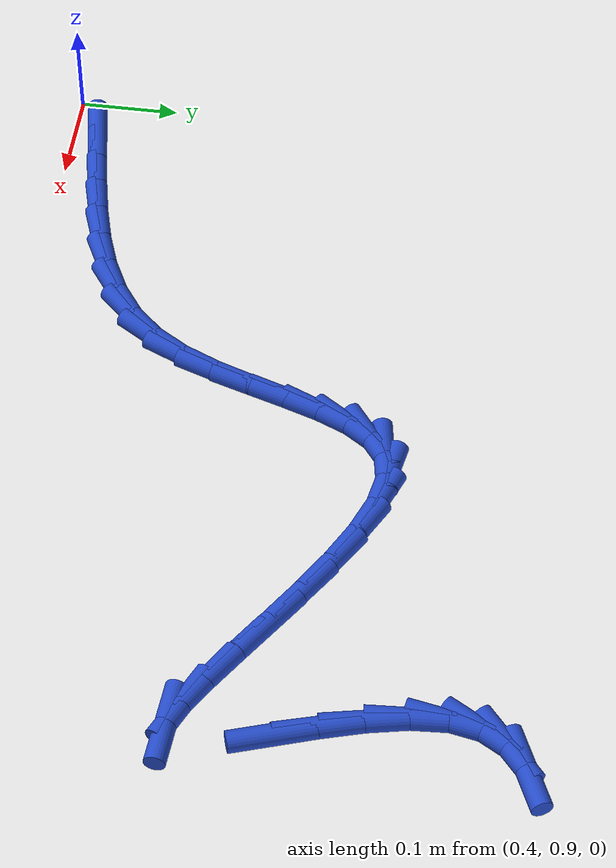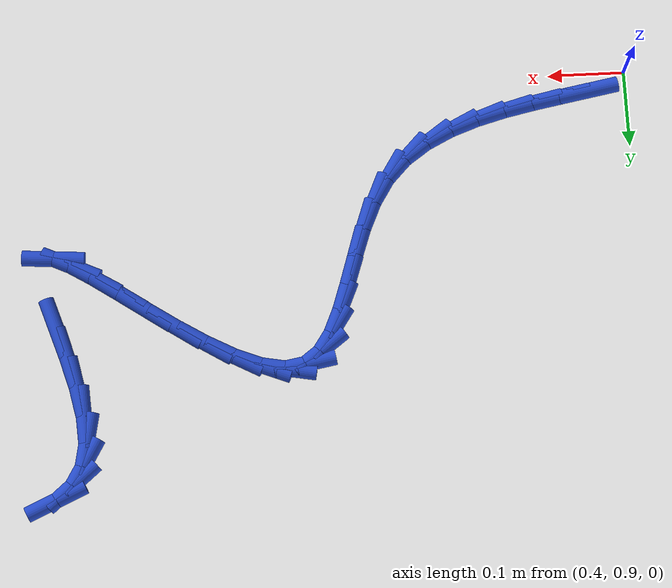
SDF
<sdf version="1.6">
 <world name="default">
  <model name="ground_plane">
   <static>1</static>
   <link name="link">
    <collision name="collision">
     <geometry><plane><normal>0 0 1</normal><size>100 100</size></plane></geometry>
     <surface><friction><ode><mu>100</mu><mu2>50</mu2></ode></friction></surface>
    </collision>
    <visual name="visual">
     <cast_shadows>0</cast_shadows>
     <geometry><plane><normal>0 0 1</normal><size>100 100</size></plane></geometry>
     <material>
      <script><uri>file://media/materials/scripts/gazebo.material</uri><name>Gazebo/WhiteGlow</name></script>
     </material>
    </visual>
   </link>
  </model>
  <model name="line">
   <link name="link_38">
    <pose>0.4507257612650472 0.9255727888614441 0.01 0 1.57 0.18050749366841143</pose>
    <collision name="collision">
     <geometry><cylinder><radius>0.01</radius><length>0.08</length></cylinder></geometry>
    </collision>
    <visual name="visual">
     <material>
      <script><name>Gazebo/Blue</name><uri>file://media/materials/scripts/gazebo.material</uri></script>
     </material>
     <geometry><cylinder><radius>0.01</radius><length>0.08</length></cylinder></geometry>
    </visual>
   </link>
   <link name="link_39">
    <pose>0.48671942074830754 0.9321414112836219 0.01 0 1.57 0.1846366498743513</pose>
    <collision name="collision">
     <geometry><cylinder><radius>0.01</radius><length>0.08</length></cylinder></geometry>
    </collision>
    <visual name="visual">
     <material>
      <script><name>Gazebo/Blue</name><uri>file://media/materials/scripts/gazebo.material</uri></script>
     </material>
     <geometry><cylinder><radius>0.01</radius><length>0.08</length></cylinder></geometry>
    </visual>
   </link>
   <link name="link_40">
    <pose>0.5238939994607079 0.9390842765438132 0.01 0 1.57 0.21304922407864987</pose>
    <collision name="collision">
     <geometry><cylinder><radius>0.01</radius><length>0.08</length></cylinder></geometry>
    </collision>
    <visual name="visual">
     <material>
      <script><name>Gazebo/Blue</name><uri>file://media/materials/scripts/gazebo.material</uri></script>
     </material>
     <geometry><cylinder><radius>0.01</radius><length>0.08</length></cylinder></geometry>
    </visual>
   </link>
   <link name="link_41">
    <pose>0.5613049868696542 0.9471774806280879 0.01 0 1.57 0.26649956743154773</pose>
    <collision name="collision">
     <geometry><cylinder><radius>0.01</radius><length>0.08</length></cylinder></geometry>
    </collision>
    <visual name="visual">
     <material>
      <script><name>Gazebo/Blue</name><uri>file://media/materials/scripts/gazebo.material</uri></script>
     </material>
     <geometry><cylinder><radius>0.01</radius><length>0.08</length></cylinder></geometry>
    </visual>
   </link>
   <link name="link_42">
    <pose>0.5980078724425522 0.9571971195225153 0.01 0 1.57 0.34818163231276467</pose>
    <collision name="collision">
     <geometry><cylinder><radius>0.01</radius><length>0.08</length></cylinder></geometry>
    </collision>
    <visual name="visual">
     <material>
      <script><name>Gazebo/Blue</name><uri>file://media/materials/scripts/gazebo.material</uri></script>
     </material>
     <geometry><cylinder><radius>0.01</radius><length>0.08</length></cylinder></geometry>
    </visual>
   </link>
   <link name="link_43">
    <pose>0.6330581456468071 0.9699192892131655 0.01 0 1.57 0.46301193897874454</pose>
    <collision name="collision">
     <geometry><cylinder><radius>0.01</radius><length>0.08</length></cylinder></geometry>
    </collision>
    <visual name="visual">
     <material>
      <script><name>Gazebo/Blue</name><uri>file://media/materials/scripts/gazebo.material</uri></script>
     </material>
     <geometry><cylinder><radius>0.01</radius><length>0.08</length></cylinder></geometry>
    </visual>
   </link>
   <link name="link_44">
    <pose>0.6655112959498244 0.9861200856861072 0.01 0 1.57 0.6157561213551858</pose>
    <collision name="collision">
     <geometry><cylinder><radius>0.01</radius><length>0.08</length></cylinder></geometry>
    </collision>
    <visual name="visual">
     <material>
      <script><name>Gazebo/Blue</name><uri>file://media/materials/scripts/gazebo.material</uri></script>
     </material>
     <geometry><cylinder><radius>0.01</radius><length>0.08</length></cylinder></geometry>
    </visual>
   </link>
   <link name="link_45">
    <pose>0.6944228128190102 1.0065756049274106 0.01 0 1.57 0.8066515519919774</pose>
    <collision name="collision">
     <geometry><cylinder><radius>0.01</radius><length>0.08</length></cylinder></geometry>
    </collision>
    <visual name="visual">
     <material>
      <script><name>Gazebo/Blue</name><uri>file://media/materials/scripts/gazebo.material</uri></script>
     </material>
     <geometry><cylinder><radius>0.01</radius><length>0.08</length></cylinder></geometry>
    </visual>
   </link>
   <link name="link_46">
    <pose>0.7188481913079522 1.0320619361290564 0.01 0 1.57 1.0084744067232623</pose>
    <collision name="collision">
     <geometry><cylinder><radius>0.01</radius><length>0.08</length></cylinder></geometry>
    </collision>
    <visual name="visual">
     <material>
      <script><name>Gazebo/Blue</name><uri>file://media/materials/scripts/gazebo.material</uri></script>
     </material>
     <geometry><cylinder><radius>0.01</radius><length>0.08</length></cylinder></geometry>
    </visual>
   </link>
   <link name="link_47">
    <pose>0.738253868550962 1.062855368030787 0.01 0 1.57 1.1516465841817818</pose>
    <collision name="collision">
     <geometry><cylinder><radius>0.01</radius><length>0.08</length></cylinder></geometry>
    </collision>
    <visual name="visual">
     <material>
      <script><name>Gazebo/Blue</name><uri>file://media/materials/scripts/gazebo.material</uri></script>
     </material>
     <geometry><cylinder><radius>0.01</radius><length>0.08</length></cylinder></geometry>
    </visual>
   </link>
   <link name="link_48">
    <pose>0.7536338773376839 1.0973742803501427 0.01 0 1.57 1.2335720529055099</pose>
    <collision name="collision">
     <geometry><cylinder><radius>0.01</radius><length>0.08</length></cylinder></geometry>
    </collision>
    <visual name="visual">
     <material>
      <script><name>Gazebo/Blue</name><uri>file://media/materials/scripts/gazebo.material</uri></script>
     </material>
     <geometry><cylinder><radius>0.01</radius><length>0.08</length></cylinder></geometry>
    </visual>
   </link>
   <link name="link_49">
    <pose>0.7663371318305985 1.1336054351170264 0.01 0 1.57 1.2641824726305135</pose>
    <collision name="collision">
     <geometry><cylinder><radius>0.01</radius><length>0.08</length></cylinder></geometry>
    </collision>
    <visual name="visual">
     <material>
      <script><name>Gazebo/Blue</name><uri>file://media/materials/scripts/gazebo.material</uri></script>
     </material>
     <geometry><cylinder><radius>0.01</radius><length>0.08</length></cylinder></geometry>
    </visual>
   </link>
   <link name="link_50">
    <pose>0.7777125461921851 1.1695355943613415 0.01 0 1.57 1.2439360731924185</pose>
    <collision name="collision">
     <geometry><cylinder><radius>0.01</radius><length>0.08</length></cylinder></geometry>
    </collision>
    <visual name="visual">
     <material>
      <script><name>Gazebo/Blue</name><uri>file://media/materials/scripts/gazebo.material</uri></script>
     </material>
     <geometry><cylinder><radius>0.01</radius><length>0.08</length></cylinder></geometry>
    </visual>
   </link>
   <link name="link_51">
    <pose>0.7891090345849238 1.2031515201129905 0.01 0 1.57 1.15973997201001</pose>
    <collision name="collision">
     <geometry><cylinder><radius>0.01</radius><length>0.08</length></cylinder></geometry>
    </collision>
    <visual name="visual">
     <material>
      <script><name>Gazebo/Blue</name><uri>file://media/materials/scripts/gazebo.material</uri></script>
     </material>
     <geometry><cylinder><radius>0.01</radius><length>0.08</length></cylinder></geometry>
    </visual>
   </link>
   <link name="link_52">
    <pose>0.8018755111712947 1.2324399744018777 0.01 0 1.57 0.9771768632697877</pose>
    <collision name="collision">
     <geometry><cylinder><radius>0.01</radius><length>0.08</length></cylinder></geometry>
    </collision>
    <visual name="visual">
     <material>
      <script><name>Gazebo/Blue</name><uri>file://media/materials/scripts/gazebo.material</uri></script>
     </material>
     <geometry><cylinder><radius>0.01</radius><length>0.08</length></cylinder></geometry>
    </visual>
   </link>
   <link name="link_53">
    <pose>0.8173608901137775 1.2553877192579048 0.01 0 1.57 0.6411698822605154</pose>
    <collision name="collision">
     <geometry><cylinder><radius>0.01</radius><length>0.08</length></cylinder></geometry>
    </collision>
    <visual name="visual">
     <material>
      <script><name>Gazebo/Blue</name><uri>file://media/materials/scripts/gazebo.material</uri></script>
     </material>
     <geometry><cylinder><radius>0.01</radius><length>0.08</length></cylinder></geometry>
    </visual>
   </link>
   <link name="link_54">
    <pose>0.836914085574852 1.2699815167109751 0.01 0 1.57 0.1737670100095126</pose>
    <collision name="collision">
     <geometry><cylinder><radius>0.01</radius><length>0.08</length></cylinder></geometry>
    </collision>
    <visual name="visual">
     <material>
      <script><name>Gazebo/Blue</name><uri>file://media/materials/scripts/gazebo.material</uri></script>
     </material>
     <geometry><cylinder><radius>0.01</radius><length>0.08</length></cylinder></geometry>
    </visual>
   </link>
   <link name="link_55">
    <pose>0.8617907383984234 1.2743482986428687 0.01 0 1.57 -0.182812134037532</pose>
    <collision name="collision">
     <geometry><cylinder><radius>0.01</radius><length>0.08</length></cylinder></geometry>
    </collision>
    <visual name="visual">
     <material>
      <script><name>Gazebo/Blue</name><uri>file://media/materials/scripts/gazebo.material</uri></script>
     </material>
     <geometry><cylinder><radius>0.01</radius><length>0.08</length></cylinder></geometry>
    </visual>
   </link>
   <link name="link_56">
    <pose>0.8917912460740702 1.268801916501834 0.01 0 1.57 -0.3781019902746656</pose>
    <collision name="collision">
     <geometry><cylinder><radius>0.01</radius><length>0.08</length></cylinder></geometry>
    </collision>
    <visual name="visual">
     <material>
      <script><name>Gazebo/Blue</name><uri>file://media/materials/scripts/gazebo.material</uri></script>
     </material>
     <geometry><cylinder><radius>0.01</radius><length>0.08</length></cylinder></geometry>
    </visual>
   </link>
   <link name="link_57">
    <pose>0.9255644710024911 1.255386732725814 0.01 0 1.57 -0.4879142463259823</pose>
    <collision name="collision">
     <geometry><cylinder><radius>0.01</radius><length>0.08</length></cylinder></geometry>
    </collision>
    <visual name="visual">
     <material>
      <script><name>Gazebo/Blue</name><uri>file://media/materials/scripts/gazebo.material</uri></script>
     </material>
     <geometry><cylinder><radius>0.01</radius><length>0.08</length></cylinder></geometry>
    </visual>
   </link>
   <link name="link_58">
    <pose>0.9617277891304779 1.2361944271597862 0.01 0 1.57 -0.551721654150297</pose>
    <collision name="collision">
     <geometry><cylinder><radius>0.01</radius><length>0.08</length></cylinder></geometry>
    </collision>
    <visual name="visual">
     <material>
      <script><name>Gazebo/Blue</name><uri>file://media/materials/scripts/gazebo.material</uri></script>
     </material>
     <geometry><cylinder><radius>0.01</radius><length>0.08</length></cylinder></geometry>
    </visual>
   </link>
   <link name="link_59">
    <pose>0.9988985764048219 1.2133166796487287 0.01 0 1.57 -0.5868933590739235</pose>
    <collision name="collision">
     <geometry><cylinder><radius>0.01</radius><length>0.08</length></cylinder></geometry>
    </collision>
    <visual name="visual">
     <material>
      <script><name>Gazebo/Blue</name><uri>file://media/materials/scripts/gazebo.material</uri></script>
     </material>
     <geometry><cylinder><radius>0.01</radius><length>0.08</length></cylinder></geometry>
    </visual>
   </link>
   <link name="link_60">
    <pose>1.035694208772315 1.1888451700376186 0.01 0 1.57 -0.6000565069484108</pose>
    <collision name="collision">
     <geometry><cylinder><radius>0.01</radius><length>0.08</length></cylinder></geometry>
    </collision>
    <visual name="visual">
     <material>
      <script><name>Gazebo/Blue</name><uri>file://media/materials/scripts/gazebo.material</uri></script>
     </material>
     <geometry><cylinder><radius>0.01</radius><length>0.08</length></cylinder></geometry>
    </visual>
   </link>
   <link name="link_61">
    <pose>1.0707320621797478 1.1648715781714338 0.01 0 1.57 -0.5905815460054495</pose>
    <collision name="collision">
     <geometry><cylinder><radius>0.01</radius><length>0.08</length></cylinder></geometry>
    </collision>
    <visual name="visual">
     <material>
      <script><name>Gazebo/Blue</name><uri>file://media/materials/scripts/gazebo.material</uri></script>
     </material>
     <geometry><cylinder><radius>0.01</radius><length>0.08</length></cylinder></geometry>
    </visual>
   </link>
   <link name="link_62">
    <pose>1.1026295125739116 1.1434875838951513 0.01 0 1.57 -0.5478549832931016</pose>
    <collision name="collision">
     <geometry><cylinder><radius>0.01</radius><length>0.08</length></cylinder></geometry>
    </collision>
    <visual name="visual">
     <material>
      <script><name>Gazebo/Blue</name><uri>file://media/materials/scripts/gazebo.material</uri></script>
     </material>
     <geometry><cylinder><radius>0.01</radius><length>0.08</length></cylinder></geometry>
    </visual>
   </link>
   <link name="link_63">
    <pose>1.1300039359015983 1.1267848670537484 0.01 0 1.57 -0.43321752810237335</pose>
    <collision name="collision">
     <geometry><cylinder><radius>0.01</radius><length>0.08</length></cylinder></geometry>
    </collision>
    <visual name="visual">
     <material>
      <script><name>Gazebo/Blue</name><uri>file://media/materials/scripts/gazebo.material</uri></script>
     </material>
     <geometry><cylinder><radius>0.01</radius><length>0.08</length></cylinder></geometry>
    </visual>
   </link>
   <link name="link_64">
    <pose>1.1514727081096 1.1168551074922035 0.01 0 1.57 -0.07497100596428513</pose>
    <collision name="collision">
     <geometry><cylinder><radius>0.01</radius><length>0.08</length></cylinder></geometry>
    </collision>
    <visual name="visual">
     <material>
      <script><name>Gazebo/Blue</name><uri>file://media/materials/scripts/gazebo.material</uri></script>
     </material>
     <geometry><cylinder><radius>0.01</radius><length>0.08</length></cylinder></geometry>
    </visual>
   </link>
   <link name="link_69">
    <pose>1.1493672520503915 1.2087355696015551 0.01 0 1.57 -1.2491863948866875</pose>
    <collision name="collision">
     <geometry><cylinder><radius>0.01</radius><length>0.08</length></cylinder></geometry>
    </collision>
    <visual name="visual">
     <material>
      <script><name>Gazebo/Blue</name><uri>file://media/materials/scripts/gazebo.material</uri></script>
     </material>
     <geometry><cylinder><radius>0.01</radius><length>0.08</length></cylinder></geometry>
    </visual>
   </link>
   <link name="link_70">
    <pose>1.1367287972465376 1.2466687140236865 0.01 0 1.57 -1.2851010266673877</pose>
    <collision name="collision">
     <geometry><cylinder><radius>0.01</radius><length>0.08</length></cylinder></geometry>
    </collision>
    <visual name="visual">
     <material>
      <script><name>Gazebo/Blue</name><uri>file://media/materials/scripts/gazebo.material</uri></script>
     </material>
     <geometry><cylinder><radius>0.01</radius><length>0.08</length></cylinder></geometry>
    </visual>
   </link>
   <link name="link_71">
    <pose>1.1252365868859682 1.285793697821232 0.01 0 1.57 -1.3617103245073632</pose>
    <collision name="collision">
     <geometry><cylinder><radius>0.01</radius><length>0.08</length></cylinder></geometry>
    </collision>
    <visual name="visual">
     <material>
      <script><name>Gazebo/Blue</name><uri>file://media/materials/scripts/gazebo.material</uri></script>
     </material>
     <geometry><cylinder><radius>0.01</radius><length>0.08</length></cylinder></geometry>
    </visual>
   </link>
   <link name="link_72">
    <pose>1.1171798073628234 1.3237638625877761 0.01 0 1.57 -1.5032389754969586</pose>
    <collision name="collision">
     <geometry><cylinder><radius>0.01</radius><length>0.08</length></cylinder></geometry>
    </collision>
    <visual name="visual">
     <material>
      <script><name>Gazebo/Blue</name><uri>file://media/materials/scripts/gazebo.material</uri></script>
     </material>
     <geometry><cylinder><radius>0.01</radius><length>0.08</length></cylinder></geometry>
    </visual>
   </link>
   <link name="link_73">
    <pose>1.114847645071245 1.3582325499169035 0.01 0 1.57 1.3844136864425602</pose>
    <collision name="collision">
     <geometry><cylinder><radius>0.01</radius><length>0.08</length></cylinder></geometry>
    </collision>
    <visual name="visual">
     <material>
      <script><name>Gazebo/Blue</name><uri>file://media/materials/scripts/gazebo.material</uri></script>
     </material>
     <geometry><cylinder><radius>0.01</radius><length>0.08</length></cylinder></geometry>
    </visual>
   </link>
   <link name="link_74">
    <pose>1.1202836796227331 1.387060029439835 0.01 0 1.57 1.0430162346590754</pose>
    <collision name="collision">
     <geometry><cylinder><radius>0.01</radius><length>0.08</length></cylinder></geometry>
    </collision>
    <visual name="visual">
     <material>
      <script><name>Gazebo/Blue</name><uri>file://media/materials/scripts/gazebo.material</uri></script>
     </material>
     <geometry><cylinder><radius>0.01</radius><length>0.08</length></cylinder></geometry>
    </visual>
   </link>
   <link name="link_75">
    <pose>1.1335337096160758 1.4097897364566747 0.01 0 1.57 0.7009519575726849</pose>
    <collision name="collision">
     <geometry><cylinder><radius>0.01</radius><length>0.08</length></cylinder></geometry>
    </collision>
    <visual name="visual">
     <material>
      <script><name>Gazebo/Blue</name><uri>file://media/materials/scripts/gazebo.material</uri></script>
     </material>
     <geometry><cylinder><radius>0.01</radius><length>0.08</length></cylinder></geometry>
    </visual>
   </link>
   <link name="link_76">
    <pose>1.1536713229481659 1.426784210897084 0.01 0 1.57 0.41920578496889355</pose>
    <collision name="collision">
     <geometry><cylinder><radius>0.01</radius><length>0.08</length></cylinder></geometry>
    </collision>
    <visual name="visual">
     <material>
      <script><name>Gazebo/Blue</name><uri>file://media/materials/scripts/gazebo.material</uri></script>
     </material>
     <geometry><cylinder><radius>0.01</radius><length>0.08</length></cylinder></geometry>
    </visual>
   </link>
  </model>
 </world>
</sdf>
